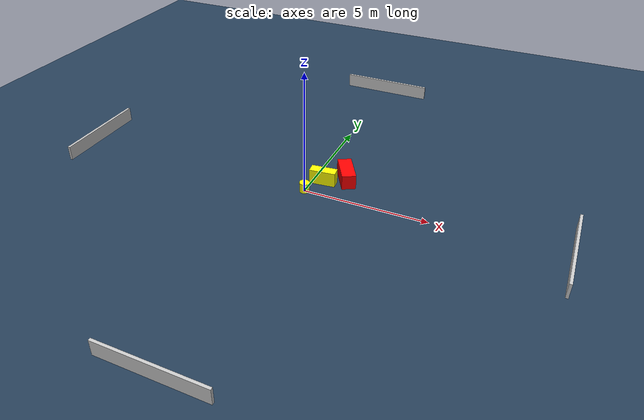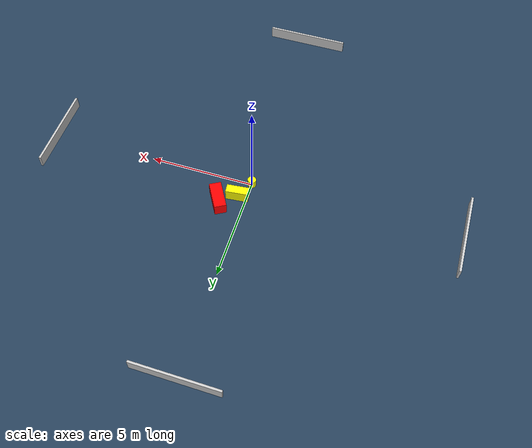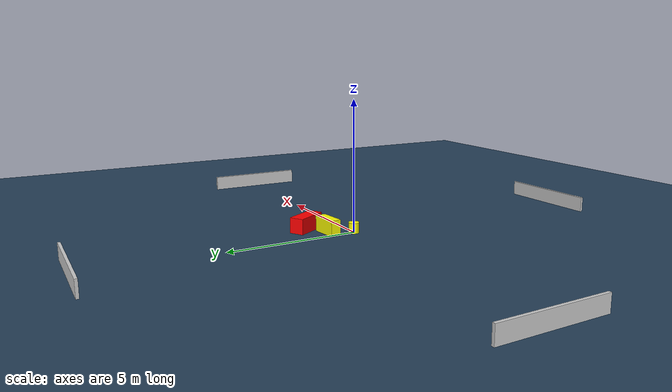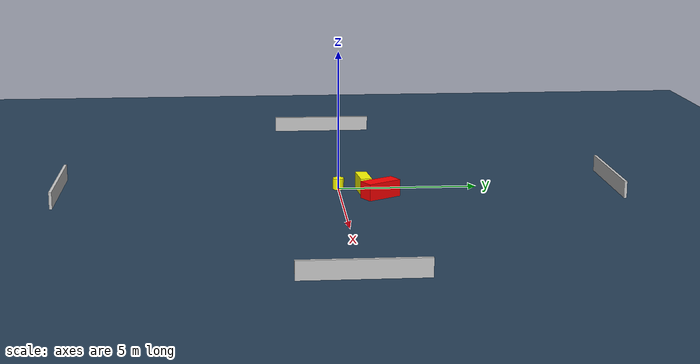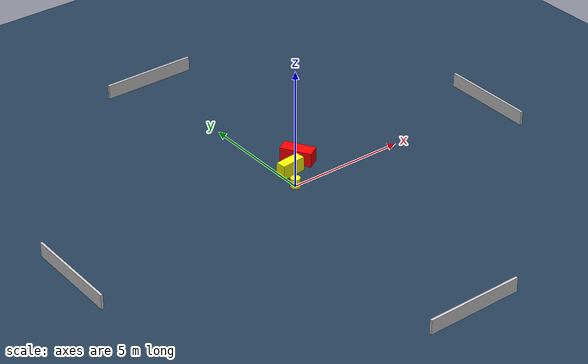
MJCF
<?xml version="1.0" ?>
<mujoco model="generated_environment">
  <option timestep="0.01" integrator="RK4" cone="elliptic"/>
  <default>
    <geom density="1"/>
  </default>
  <asset>
    <texture builtin="gradient" height="3072" name="skybox" rgb1="0.3 0.5 0.7" rgb2="0 0 0" type="skybox" width="512"/>
    <texture builtin="checker" height="300" name="groundplane" rgb1="0.2 0.3 0.4" rgb2="0.1 0.2 0.3" type="2d" width="300"/>
    <material name="groundplane" reflectance="0.2" texrepeat="5 5" texture="groundplane"/>
  </asset>
  <worldbody>
    <light dir="0 0 -1" directional="true" pos="0 0 1.5"/>
    <geom condim="3" friction="0.5 0.005 0.001" material="groundplane" name="floor" pos="0 0 0" size="0 0 0.05" type="plane"/>
    <body name="walls">
      <geom name="wall_1" condim="4" pos="-10.0 0.0 0.3" rgba="0.800000011920929 0.800000011920929 0.800000011920929 1.0" size="0.05 2.0 0.3" type="box"/>
      <geom name="wall_2" condim="4" pos="10.0 0.0 0.3" rgba="0.800000011920929 0.800000011920929 0.800000011920929 1.0" size="0.05 2.0 0.3" type="box"/>
      <geom name="wall_3" condim="4" pos="0.0 -10.0 0.3" rgba="0.800000011920929 0.800000011920929 0.800000011920929 1.0" size="2.0 0.05 0.3" type="box"/>
      <geom name="wall_4" condim="4" pos="0.0 10.0 0.3" rgba="0.800000011920929 0.800000011920929 0.800000011920929 1.0" size="2.0 0.05 0.3" type="box"/>
    </body>
    <body name="robot">
      <joint name="joint_x" type="slide" pos="0 0 0" axis="1 0 0"/>
      <joint name="joint_y" type="slide" pos="0 0 0" axis="0 1 0"/>
      <geom name="robot" type="cylinder" pos="0.0 0.0 0.2" size="0.2 0.2 0.0" mass="5.0" friction="1.0 0.005 0.0001" condim="4" rgba="1.0 1.0 0.0 1.0"/>
    </body>
    <body name="obstacle_1_movable">
      <geom name="obstacle_1_movable" condim="4" pos="0.4279654738505264 0.8720493696011531 0.3" euler="0 0 185.95383284891196" friction="0.0 0.005 0.001" rgba="1.0 1.0 0.0 1.0" size="0.527400015151817 0.20490888011920583 0.3" type="box" mass="0.1"/>
      <joint type="free"/>
    </body>
    <body name="obstacle_2_static">
      <geom name="obstacle_2_static" condim="4" pos="1.2094530641903054 1.4042738076274646 0.3" euler="0 0 300.0891837795059" friction="0.0 0.005 0.001" rgba="1.0 0.0 0.0 1.0" size="0.658268911556321 0.2815655957924901 0.3" type="box"/>
    </body>
  </worldbody>
  <actuator>
    <motor name="actuator_x" joint="joint_x" gear="1" ctrlrange="-1 1"/>
    <motor name="actuator_y" joint="joint_y" gear="1" ctrlrange="-1 1"/>
  </actuator>
</mujoco>
